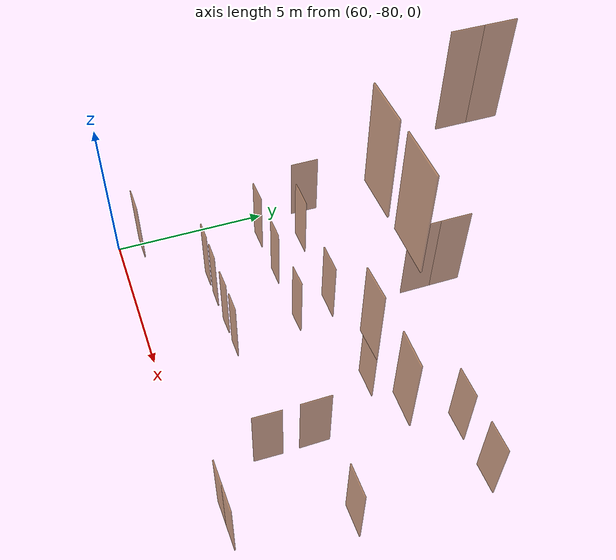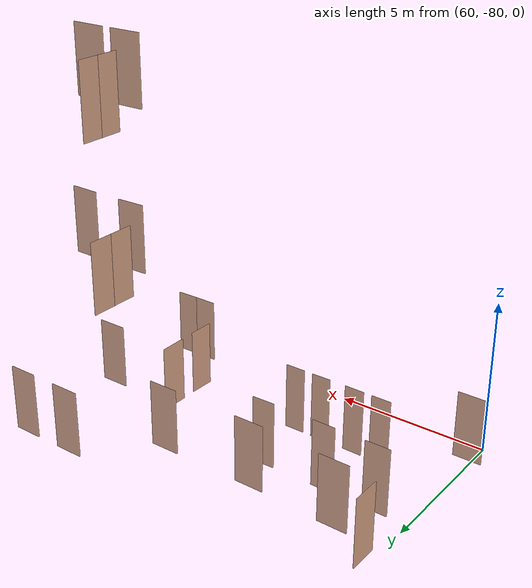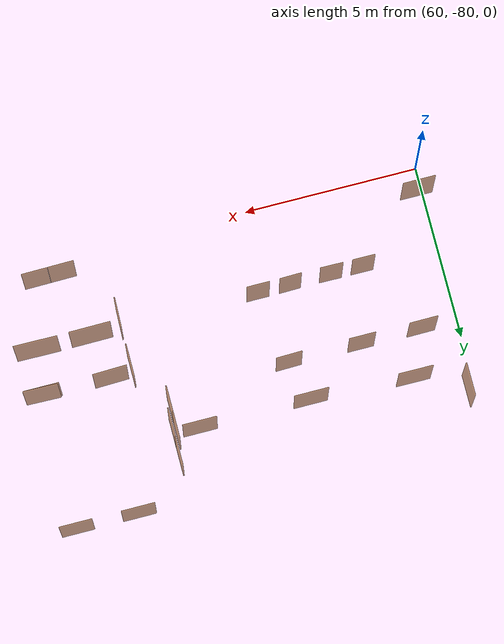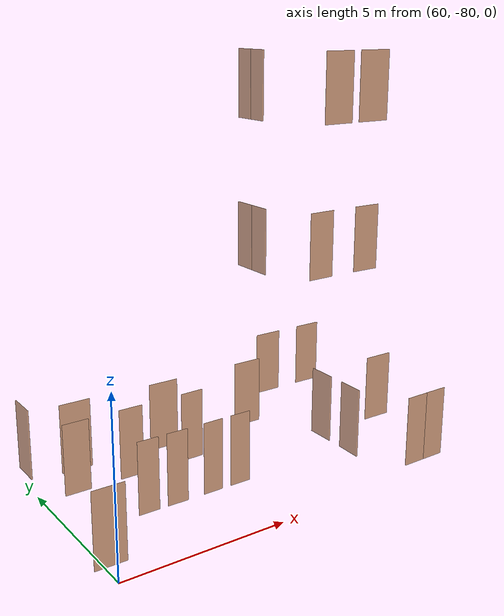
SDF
<sdf version="1.7">
 <world name="sim_world">
  <model name="p63">
   <pose>70.82112381855357 -79.4430016888389 0.0 0 0 0.013018026899995077</pose>
   <link name="right">
    <pose>0.3772541223731423 0 1.11 0 0 0</pose>
    <visual name="right_visual">
     <geometry><box><size>0.7445082447462846 0.03 2.2</size></box></geometry>
     <material>
      <ambient>0.5 0.25 0 0.6</ambient>
      <diffuse>0.5 0.25 0 0.6</diffuse>
      <pbr><metal><metalness>0.0</metalness></metal></pbr>
     </material>
    </visual>
    <collision name="right_collision">
     <geometry><box><size>0.7445082447462846 0.03 2.2</size></box></geometry>
     <surface><contact><collide_bitmask>0x02</collide_bitmask></contact></surface>
    </collision>
    <inertial>
     <mass>50.0</mass>
     <inertia><ixx>20.17041666666667</ixx><iyy>22.476218860396646</iyy><izz>2.313302193729974</izz></inertia>
    </inertial>
   </link>
   <joint name="right_joint" type="revolute">
    <parent>world</parent>
    <child>right</child>
    <axis><xyz>0 0 1</xyz><limit><lower>0</lower><upper>1.57</upper></limit></axis>
    <pose>0.3772541223731423 0 0 0 0 0</pose>
   </joint>
   <link name="left">
    <pose>-0.3772541223731423 0 1.11 0 0 0</pose>
    <visual name="left_visual">
     <geometry><box><size>0.7445082447462846 0.03 2.2</size></box></geometry>
     <material>
      <ambient>0.5 0.25 0 0.6</ambient>
      <diffuse>0.5 0.25 0 0.6</diffuse>
      <pbr><metal><metalness>0.0</metalness></metal></pbr>
     </material>
    </visual>
    <collision name="left_collision">
     <geometry><box><size>0.7445082447462846 0.03 2.2</size></box></geometry>
     <surface><contact><collide_bitmask>0x02</collide_bitmask></contact></surface>
    </collision>
    <inertial>
     <mass>50.0</mass>
     <inertia><ixx>20.17041666666667</ixx><iyy>22.476218860396646</iyy><izz>2.313302193729974</izz></inertia>
    </inertial>
   </link>
   <joint name="left_joint" type="revolute">
    <parent>world</parent>
    <child>left</child>
    <axis><xyz>0 0 1</xyz><limit><lower>-1.57</lower><upper>0</upper></limit></axis>
    <pose>-0.3772541223731423 0 0 0 0 0</pose>
   </joint>
   <plugin name="register_component" filename="libregister_component.so">
    <component name="Door">
     <v_max_door>0.5</v_max_door>
     <a_max_door>0.3</a_max_door>
     <a_nom_door>0.15</a_nom_door>
     <dx_min_door>0.01</dx_min_door>
     <f_max_door>500.0</f_max_door>
     <ros_interface>true</ros_interface>
     <door name="p63" type="DoubleSwingDoor" left_joint_name="left_joint" right_joint_name="right_joint"/>
    </component>
   </plugin>
  </model>
  <model name="p64">
   <pose>60.261414476608145 -73.4639788450713 0.0 0 0 -1.5707963267948966</pose>
   <link name="right">
    <pose>0 0 1.11 0 0 0</pose>
    <visual name="right_visual">
     <geometry><box><size>0.932327634736742 0.03 2.2</size></box></geometry>
     <material>
      <ambient>0.5 0.25 0 0.6</ambient>
      <diffuse>0.5 0.25 0 0.6</diffuse>
      <pbr><metal><metalness>0.0</metalness></metal></pbr>
     </material>
    </visual>
    <collision name="right_collision">
     <geometry><box><size>0.932327634736742 0.03 2.2</size></box></geometry>
     <surface><contact><collide_bitmask>0x02</collide_bitmask></contact></surface>
    </collision>
    <inertial>
     <mass>50.0</mass>
     <inertia><ixx>20.17041666666667</ixx><iyy>23.78847841039087</iyy><izz>3.625561743724199</izz></inertia>
    </inertial>
   </link>
   <joint name="right_joint" type="revolute">
    <parent>world</parent>
    <child>right</child>
    <axis><xyz>0 0 -1</xyz><limit><lower>0</lower><upper>1.57</upper></limit></axis>
    <pose>0.471163817368371 0 0 0 0 0</pose>
   </joint>
   <plugin name="register_component" filename="libregister_component.so">
    <component name="Door">
     <v_max_door>0.5</v_max_door>
     <a_max_door>0.3</a_max_door>
     <a_nom_door>0.15</a_nom_door>
     <dx_min_door>0.01</dx_min_door>
     <f_max_door>500.0</f_max_door>
     <ros_interface>true</ros_interface>
     <door name="p64" type="SwingDoor" left_joint_name="empty_joint" right_joint_name="right_joint"/>
    </component>
   </plugin>
  </model>
  <model name="p65">
   <pose>61.65566205445769 -74.09303798405978 0.0 0 0 3.137581021143092</pose>
   <link name="right">
    <pose>0 0 1.11 0 0 0</pose>
    <visual name="right_visual">
     <geometry><box><size>0.9815341554676652 0.03 2.2</size></box></geometry>
     <material>
      <ambient>0.5 0.25 0 0.6</ambient>
      <diffuse>0.5 0.25 0 0.6</diffuse>
      <pbr><metal><metalness>0.0</metalness></metal></pbr>
     </material>
    </visual>
    <collision name="right_collision">
     <geometry><box><size>0.9815341554676652 0.03 2.2</size></box></geometry>
     <surface><contact><collide_bitmask>0x02</collide_bitmask></contact></surface>
    </collision>
    <inertial>
     <mass>50.0</mass>
     <inertia><ixx>20.17041666666667</ixx><iyy>24.180872076456765</iyy><izz>4.017955409790095</izz></inertia>
    </inertial>
   </link>
   <joint name="right_joint" type="revolute">
    <parent>world</parent>
    <child>right</child>
    <axis><xyz>0 0 -1</xyz><limit><lower>0</lower><upper>1.57</upper></limit></axis>
    <pose>0.4957670777338326 0 0 0 0 0</pose>
   </joint>
   <plugin name="register_component" filename="libregister_component.so">
    <component name="Door">
     <v_max_door>0.5</v_max_door>
     <a_max_door>0.3</a_max_door>
     <a_nom_door>0.15</a_nom_door>
     <dx_min_door>0.01</dx_min_door>
     <f_max_door>500.0</f_max_door>
     <ros_interface>true</ros_interface>
     <door name="p65" type="SwingDoor" left_joint_name="empty_joint" right_joint_name="right_joint"/>
    </component>
   </plugin>
  </model>
  <model name="p66">
   <pose>61.084390092145455 -75.39346611952243 0.0 0 0 0.007190021528864753</pose>
   <link name="right">
    <pose>0 0 1.11 0 0 0</pose>
    <visual name="right_visual">
     <geometry><box><size>0.8090191256990077 0.03 2.2</size></box></geometry>
     <material>
      <ambient>0.5 0.25 0 0.6</ambient>
      <diffuse>0.5 0.25 0 0.6</diffuse>
      <pbr><metal><metalness>0.0</metalness></metal></pbr>
     </material>
    </visual>
    <collision name="right_collision">
     <geometry><box><size>0.8090191256990077 0.03 2.2</size></box></geometry>
     <surface><contact><collide_bitmask>0x02</collide_bitmask></contact></surface>
    </collision>
    <inertial>
     <mass>50.0</mass>
     <inertia><ixx>20.17041666666667</ixx><iyy>22.89379977394495</iyy><izz>2.7308831072782787</izz></inertia>
    </inertial>
   </link>
   <joint name="right_joint" type="revolute">
    <parent>world</parent>
    <child>right</child>
    <axis><xyz>0 0 1</xyz><limit><lower>0</lower><upper>1.57</upper></limit></axis>
    <pose>0.40950956284950385 0 0 0 0 0</pose>
   </joint>
   <plugin name="register_component" filename="libregister_component.so">
    <component name="Door">
     <v_max_door>0.5</v_max_door>
     <a_max_door>0.3</a_max_door>
     <a_nom_door>0.15</a_nom_door>
     <dx_min_door>0.01</dx_min_door>
     <f_max_door>500.0</f_max_door>
     <ros_interface>true</ros_interface>
     <door name="p66" type="SwingDoor" left_joint_name="empty_joint" right_joint_name="right_joint"/>
    </component>
   </plugin>
  </model>
  <model name="p67">
   <pose>62.84169357944954 -75.3905217623182 0.0 0 0 0.0</pose>
   <link name="right">
    <pose>0 0 1.11 0 0 0</pose>
    <visual name="right_visual">
     <geometry><box><size>0.7551328849515551 0.03 2.2</size></box></geometry>
     <material>
      <ambient>0.5 0.25 0 0.6</ambient>
      <diffuse>0.5 0.25 0 0.6</diffuse>
      <pbr><metal><metalness>0.0</metalness></metal></pbr>
     </material>
    </visual>
    <collision name="right_collision">
     <geometry><box><size>0.7551328849515551 0.03 2.2</size></box></geometry>
     <surface><contact><collide_bitmask>0x02</collide_bitmask></contact></surface>
    </collision>
    <inertial>
     <mass>50.0</mass>
     <inertia><ixx>20.17041666666667</ixx><iyy>22.542606974730248</iyy><izz>2.3796903080635774</izz></inertia>
    </inertial>
   </link>
   <joint name="right_joint" type="revolute">
    <parent>world</parent>
    <child>right</child>
    <axis><xyz>0 0 1</xyz><limit><lower>0</lower><upper>1.57</upper></limit></axis>
    <pose>0.38256644247577754 0 0 0 0 0</pose>
   </joint>
   <plugin name="register_component" filename="libregister_component.so">
    <component name="Door">
     <v_max_door>0.5</v_max_door>
     <a_max_door>0.3</a_max_door>
     <a_nom_door>0.15</a_nom_door>
     <dx_min_door>0.01</dx_min_door>
     <f_max_door>500.0</f_max_door>
     <ros_interface>true</ros_interface>
     <door name="p67" type="SwingDoor" left_joint_name="empty_joint" right_joint_name="right_joint"/>
    </component>
   </plugin>
  </model>
  <model name="p68">
   <pose>60.179939112915214 -79.25145180883534 0.0 0 0 0.0</pose>
   <link name="right">
    <pose>0 0 1.11 0 0 0</pose>
    <visual name="right_visual">
     <geometry><box><size>0.9287499629640672 0.03 2.2</size></box></geometry>
     <material>
      <ambient>0.5 0.25 0 0.6</ambient>
      <diffuse>0.5 0.25 0 0.6</diffuse>
      <pbr><metal><metalness>0.0</metalness></metal></pbr>
     </material>
    </visual>
    <collision name="right_collision">
     <geometry><box><size>0.9287499629640672 0.03 2.2</size></box></geometry>
     <surface><contact><collide_bitmask>0x02</collide_bitmask></contact></surface>
    </collision>
    <inertial>
     <mass>50.0</mass>
     <inertia><ixx>20.17041666666667</ixx><iyy>23.760735390440654</iyy><izz>3.5978187237739845</izz></inertia>
    </inertial>
   </link>
   <joint name="right_joint" type="revolute">
    <parent>world</parent>
    <child>right</child>
    <axis><xyz>0 0 -1</xyz><limit><lower>0</lower><upper>1.57</upper></limit></axis>
    <pose>0.4693749814820336 0 0 0 0 0</pose>
   </joint>
   <plugin name="register_component" filename="libregister_component.so">
    <component name="Door">
     <v_max_door>0.5</v_max_door>
     <a_max_door>0.3</a_max_door>
     <a_nom_door>0.15</a_nom_door>
     <dx_min_door>0.01</dx_min_door>
     <f_max_door>500.0</f_max_door>
     <ros_interface>true</ros_interface>
     <door name="p68" type="SwingDoor" left_joint_name="empty_joint" right_joint_name="right_joint"/>
    </component>
   </plugin>
  </model>
  <model name="p69">
   <pose>62.24107804213213 -77.51142558739005 0.0 0 0 -0.00240343465995288</pose>
   <link name="right">
    <pose>0 0 1.11 0 0 0</pose>
    <visual name="right_visual">
     <geometry><box><size>0.6464491123664134 0.03 2.2</size></box></geometry>
     <material>
      <ambient>0.5 0.25 0 0.6</ambient>
      <diffuse>0.5 0.25 0 0.6</diffuse>
      <pbr><metal><metalness>0.0</metalness></metal></pbr>
     </material>
    </visual>
    <collision name="right_collision">
     <geometry><box><size>0.6464491123664134 0.03 2.2</size></box></geometry>
     <surface><contact><collide_bitmask>0x02</collide_bitmask></contact></surface>
    </collision>
    <inertial>
     <mass>50.0</mass>
     <inertia><ixx>20.17041666666667</ixx><iyy>21.90790189533052</iyy><izz>1.7449852286638496</izz></inertia>
    </inertial>
   </link>
   <joint name="right_joint" type="revolute">
    <parent>world</parent>
    <child>right</child>
    <axis><xyz>0 0 -1</xyz><limit><lower>0</lower><upper>1.57</upper></limit></axis>
    <pose>0.32822455618320673 0 0 0 0 0</pose>
   </joint>
   <plugin name="register_component" filename="libregister_component.so">
    <component name="Door">
     <v_max_door>0.5</v_max_door>
     <a_max_door>0.3</a_max_door>
     <a_nom_door>0.15</a_nom_door>
     <dx_min_door>0.01</dx_min_door>
     <f_max_door>500.0</f_max_door>
     <ros_interface>true</ros_interface>
     <door name="p69" type="SwingDoor" left_joint_name="empty_joint" right_joint_name="right_joint"/>
    </component>
   </plugin>
  </model>
  <model name="p70">
   <pose>63.16139521791951 -77.51698097834144 0.0 0 0 3.127071976316211</pose>
   <link name="right">
    <pose>0 0 1.11 0 0 0</pose>
    <visual name="right_visual">
     <geometry><box><size>0.6465386523363117 0.03 2.2</size></box></geometry>
     <material>
      <ambient>0.5 0.25 0 0.6</ambient>
      <diffuse>0.5 0.25 0 0.6</diffuse>
      <pbr><metal><metalness>0.0</metalness></metal></pbr>
     </material>
    </visual>
    <collision name="right_collision">
     <geometry><box><size>0.6465386523363117 0.03 2.2</size></box></geometry>
     <surface><contact><collide_bitmask>0x02</collide_bitmask></contact></surface>
    </collision>
    <inertial>
     <mass>50.0</mass>
     <inertia><ixx>20.17041666666667</ixx><iyy>21.908384287353563</iyy><izz>1.7454676206868924</izz></inertia>
    </inertial>
   </link>
   <joint name="right_joint" type="revolute">
    <parent>world</parent>
    <child>right</child>
    <axis><xyz>0 0 -1</xyz><limit><lower>0</lower><upper>1.57</upper></limit></axis>
    <pose>0.32826932616815585 0 0 0 0 0</pose>
   </joint>
   <plugin name="register_component" filename="libregister_component.so">
    <component name="Door">
     <v_max_door>0.5</v_max_door>
     <a_max_door>0.3</a_max_door>
     <a_nom_door>0.15</a_nom_door>
     <dx_min_door>0.01</dx_min_door>
     <f_max_door>500.0</f_max_door>
     <ros_interface>true</ros_interface>
     <door name="p70" type="SwingDoor" left_joint_name="empty_joint" right_joint_name="right_joint"/>
    </component>
   </plugin>
  </model>
  <model name="p71">
   <pose>64.3447601552547 -77.51539213652934 0.0 0 0 0.019988949236715937</pose>
   <link name="right">
    <pose>0 0 1.11 0 0 0</pose>
    <visual name="right_visual">
     <geometry><box><size>0.6259304249468148 0.03 2.2</size></box></geometry>
     <material>
      <ambient>0.5 0.25 0 0.6</ambient>
      <diffuse>0.5 0.25 0 0.6</diffuse>
      <pbr><metal><metalness>0.0</metalness></metal></pbr>
     </material>
    </visual>
    <collision name="right_collision">
     <geometry><box><size>0.6259304249468148 0.03 2.2</size></box></geometry>
     <surface><contact><collide_bitmask>0x02</collide_bitmask></contact></surface>
    </collision>
    <inertial>
     <mass>50.0</mass>
     <inertia><ixx>20.17041666666667</ixx><iyy>21.79912040364209</iyy><izz>1.6362037369754177</izz></inertia>
    </inertial>
   </link>
   <joint name="right_joint" type="revolute">
    <parent>world</parent>
    <child>right</child>
    <axis><xyz>0 0 -1</xyz><limit><lower>0</lower><upper>1.57</upper></limit></axis>
    <pose>0.3179652124734074 0 0 0 0 0</pose>
   </joint>
   <plugin name="register_component" filename="libregister_component.so">
    <component name="Door">
     <v_max_door>0.5</v_max_door>
     <a_max_door>0.3</a_max_door>
     <a_nom_door>0.15</a_nom_door>
     <dx_min_door>0.01</dx_min_door>
     <f_max_door>500.0</f_max_door>
     <ros_interface>true</ros_interface>
     <door name="p71" type="SwingDoor" left_joint_name="empty_joint" right_joint_name="right_joint"/>
    </component>
   </plugin>
  </model>
  <model name="p72">
   <pose>65.27858804183583 -77.50903676928097 0.0 0 0 3.141592653589793</pose>
   <link name="right">
    <pose>0 0 1.11 0 0 0</pose>
    <visual name="right_visual">
     <geometry><box><size>0.6528025836271405 0.03 2.2</size></box></geometry>
     <material>
      <ambient>0.5 0.25 0 0.6</ambient>
      <diffuse>0.5 0.25 0 0.6</diffuse>
      <pbr><metal><metalness>0.0</metalness></metal></pbr>
     </material>
    </visual>
    <collision name="right_collision">
     <geometry><box><size>0.6528025836271405 0.03 2.2</size></box></geometry>
     <surface><contact><collide_bitmask>0x02</collide_bitmask></contact></surface>
    </collision>
    <inertial>
     <mass>50.0</mass>
     <inertia><ixx>20.17041666666667</ixx><iyy>21.94229672162613</iyy><izz>1.7793800549594576</izz></inertia>
    </inertial>
   </link>
   <joint name="right_joint" type="revolute">
    <parent>world</parent>
    <child>right</child>
    <axis><xyz>0 0 -1</xyz><limit><lower>0</lower><upper>1.57</upper></limit></axis>
    <pose>0.33140129181357025 0 0 0 0 0</pose>
   </joint>
   <plugin name="register_component" filename="libregister_component.so">
    <component name="Door">
     <v_max_door>0.5</v_max_door>
     <a_max_door>0.3</a_max_door>
     <a_nom_door>0.15</a_nom_door>
     <dx_min_door>0.01</dx_min_door>
     <f_max_door>500.0</f_max_door>
     <ros_interface>true</ros_interface>
     <door name="p72" type="SwingDoor" left_joint_name="empty_joint" right_joint_name="right_joint"/>
    </component>
   </plugin>
  </model>
  <model name="p73">
   <pose>64.93937587034463 -75.38187757399785 0.0 0 0 0.022976313403259948</pose>
   <link name="right">
    <pose>0 0 1.11 0 0 0</pose>
    <visual name="right_visual">
     <geometry><box><size>0.7425096629536441 0.03 2.2</size></box></geometry>
     <material>
      <ambient>0.5 0.25 0 0.6</ambient>
      <diffuse>0.5 0.25 0 0.6</diffuse>
      <pbr><metal><metalness>0.0</metalness></metal></pbr>
     </material>
    </visual>
    <collision name="right_collision">
     <geometry><box><size>0.7425096629536441 0.03 2.2</size></box></geometry>
     <surface><contact><collide_bitmask>0x02</collide_bitmask></contact></surface>
    </collision>
    <inertial>
     <mass>50.0</mass>
     <inertia><ixx>20.17041666666667</ixx><iyy>22.463835831581395</iyy><izz>2.300919164914726</izz></inertia>
    </inertial>
   </link>
   <joint name="right_joint" type="revolute">
    <parent>world</parent>
    <child>right</child>
    <axis><xyz>0 0 1</xyz><limit><lower>0</lower><upper>1.57</upper></limit></axis>
    <pose>0.37625483147682204 0 0 0 0 0</pose>
   </joint>
   <plugin name="register_component" filename="libregister_component.so">
    <component name="Door">
     <v_max_door>0.5</v_max_door>
     <a_max_door>0.3</a_max_door>
     <a_nom_door>0.15</a_nom_door>
     <dx_min_door>0.01</dx_min_door>
     <f_max_door>500.0</f_max_door>
     <ros_interface>true</ros_interface>
     <door name="p73" type="SwingDoor" left_joint_name="empty_joint" right_joint_name="right_joint"/>
    </component>
   </plugin>
  </model>
  <model name="p74">
   <pose>64.60708571597883 -74.22113418861669 0.0 0 0 3.141592653589793</pose>
   <link name="right">
    <pose>0 0 1.11 0 0 0</pose>
    <visual name="right_visual">
     <geometry><box><size>0.9815261770021715 0.03 2.2</size></box></geometry>
     <material>
      <ambient>0.5 0.25 0 0.6</ambient>
      <diffuse>0.5 0.25 0 0.6</diffuse>
      <pbr><metal><metalness>0.0</metalness></metal></pbr>
     </material>
    </visual>
    <collision name="right_collision">
     <geometry><box><size>0.9815261770021715 0.03 2.2</size></box></geometry>
     <surface><contact><collide_bitmask>0x02</collide_bitmask></contact></surface>
    </collision>
    <inertial>
     <mass>50.0</mass>
     <inertia><ixx>20.17041666666667</ixx><iyy>24.180806817252083</iyy><izz>4.017890150585409</izz></inertia>
    </inertial>
   </link>
   <joint name="right_joint" type="revolute">
    <parent>world</parent>
    <child>right</child>
    <axis><xyz>0 0 -1</xyz><limit><lower>0</lower><upper>1.57</upper></limit></axis>
    <pose>0.49576308850108575 0 0 0 0 0</pose>
   </joint>
   <plugin name="register_component" filename="libregister_component.so">
    <component name="Door">
     <v_max_door>0.5</v_max_door>
     <a_max_door>0.3</a_max_door>
     <a_nom_door>0.15</a_nom_door>
     <dx_min_door>0.01</dx_min_door>
     <f_max_door>500.0</f_max_door>
     <ros_interface>true</ros_interface>
     <door name="p74" type="SwingDoor" left_joint_name="empty_joint" right_joint_name="right_joint"/>
    </component>
   </plugin>
  </model>
  <model name="p75">
   <pose>67.80266880981308 -74.22113418861669 0.0 0 0 3.141592653589793</pose>
   <link name="right">
    <pose>0 0 1.11 0 0 0</pose>
    <visual name="right_visual">
     <geometry><box><size>0.9831927942875802 0.03 2.2</size></box></geometry>
     <material>
      <ambient>0.5 0.25 0 0.6</ambient>
      <diffuse>0.5 0.25 0 0.6</diffuse>
      <pbr><metal><metalness>0.0</metalness></metal></pbr>
     </material>
    </visual>
    <collision name="right_collision">
     <geometry><box><size>0.9831927942875802 0.03 2.2</size></box></geometry>
     <surface><contact><collide_bitmask>0x02</collide_bitmask></contact></surface>
    </collision>
    <inertial>
     <mass>50.0</mass>
     <inertia><ixx>20.17041666666667</ixx><iyy>24.194450294745923</iyy><izz>4.03153362807925</izz></inertia>
    </inertial>
   </link>
   <joint name="right_joint" type="revolute">
    <parent>world</parent>
    <child>right</child>
    <axis><xyz>0 0 -1</xyz><limit><lower>0</lower><upper>1.57</upper></limit></axis>
    <pose>0.4965963971437901 0 0 0 0 0</pose>
   </joint>
   <plugin name="register_component" filename="libregister_component.so">
    <component name="Door">
     <v_max_door>0.5</v_max_door>
     <a_max_door>0.3</a_max_door>
     <a_nom_door>0.15</a_nom_door>
     <dx_min_door>0.01</dx_min_door>
     <f_max_door>500.0</f_max_door>
     <ros_interface>true</ros_interface>
     <door name="p75" type="SwingDoor" left_joint_name="empty_joint" right_joint_name="right_joint"/>
    </component>
   </plugin>
  </model>
  <model name="p76">
   <pose>70.0398136351516 -72.32994577938436 0.0 0 0 0.0</pose>
   <link name="right">
    <pose>0 0 1.11 0 0 0</pose>
    <visual name="right_visual">
     <geometry><box><size>0.9616600989600295 0.03 2.2</size></box></geometry>
     <material>
      <ambient>0.5 0.25 0 0.6</ambient>
      <diffuse>0.5 0.25 0 0.6</diffuse>
      <pbr><metal><metalness>0.0</metalness></metal></pbr>
     </material>
    </visual>
    <collision name="right_collision">
     <geometry><box><size>0.9616600989600295 0.03 2.2</size></box></geometry>
     <surface><contact><collide_bitmask>0x02</collide_bitmask></contact></surface>
    </collision>
    <inertial>
     <mass>50.0</mass>
     <inertia><ixx>20.17041666666667</ixx><iyy>24.019958941382562</iyy><izz>3.8570422747158903</izz></inertia>
    </inertial>
   </link>
   <joint name="right_joint" type="revolute">
    <parent>world</parent>
    <child>right</child>
    <axis><xyz>0 0 1</xyz><limit><lower>0</lower><upper>1.57</upper></limit></axis>
    <pose>0.48583004948001474 0 0 0 0 0</pose>
   </joint>
   <plugin name="register_component" filename="libregister_component.so">
    <component name="Door">
     <v_max_door>0.5</v_max_door>
     <a_max_door>0.3</a_max_door>
     <a_nom_door>0.15</a_nom_door>
     <dx_min_door>0.01</dx_min_door>
     <f_max_door>500.0</f_max_door>
     <ros_interface>true</ros_interface>
     <door name="p76" type="SwingDoor" left_joint_name="empty_joint" right_joint_name="right_joint"/>
    </component>
   </plugin>
  </model>
  <model name="p77">
   <pose>71.81303887292233 -72.32994577938436 0.0 0 0 3.141592653589793</pose>
   <link name="right">
    <pose>0 0 1.11 0 0 0</pose>
    <visual name="right_visual">
     <geometry><box><size>0.9415495837160301 0.03 2.2</size></box></geometry>
     <material>
      <ambient>0.5 0.25 0 0.6</ambient>
      <diffuse>0.5 0.25 0 0.6</diffuse>
      <pbr><metal><metalness>0.0</metalness></metal></pbr>
     </material>
    </visual>
    <collision name="right_collision">
     <geometry><box><size>0.9415495837160301 0.03 2.2</size></box></geometry>
     <surface><contact><collide_bitmask>0x02</collide_bitmask></contact></surface>
    </collision>
    <inertial>
     <mass>50.0</mass>
     <inertia><ixx>20.17041666666667</ixx><iyy>23.860481744149297</iyy><izz>3.697565077482624</izz></inertia>
    </inertial>
   </link>
   <joint name="right_joint" type="revolute">
    <parent>world</parent>
    <child>right</child>
    <axis><xyz>0 0 -1</xyz><limit><lower>0</lower><upper>1.57</upper></limit></axis>
    <pose>0.4757747918580151 0 0 0 0 0</pose>
   </joint>
   <plugin name="register_component" filename="libregister_component.so">
    <component name="Door">
     <v_max_door>0.5</v_max_door>
     <a_max_door>0.3</a_max_door>
     <a_nom_door>0.15</a_nom_door>
     <dx_min_door>0.01</dx_min_door>
     <f_max_door>500.0</f_max_door>
     <ros_interface>true</ros_interface>
     <door name="p77" type="SwingDoor" left_joint_name="empty_joint" right_joint_name="right_joint"/>
    </component>
   </plugin>
  </model>
  <model name="p78">
   <pose>71.78797294894972 -76.23294124618535 0.0 0 0 3.141592653589793</pose>
   <link name="right">
    <pose>0 0 1.11 0 0 0</pose>
    <visual name="right_visual">
     <geometry><box><size>0.9804373203757046 0.03 2.2</size></box></geometry>
     <material>
      <ambient>0.5 0.25 0 0.6</ambient>
      <diffuse>0.5 0.25 0 0.6</diffuse>
      <pbr><metal><metalness>0.0</metalness></metal></pbr>
     </material>
    </visual>
    <collision name="right_collision">
     <geometry><box><size>0.9804373203757046 0.03 2.2</size></box></geometry>
     <surface><contact><collide_bitmask>0x02</collide_bitmask></contact></surface>
    </collision>
    <inertial>
     <mass>50.0</mass>
     <inertia><ixx>20.17041666666667</ixx><iyy>24.171905579939555</iyy><izz>4.0089889132728835</izz></inertia>
    </inertial>
   </link>
   <joint name="right_joint" type="revolute">
    <parent>world</parent>
    <child>right</child>
    <axis><xyz>0 0 1</xyz><limit><lower>0</lower><upper>1.57</upper></limit></axis>
    <pose>0.4952186601878523 0 0 0 0 0</pose>
   </joint>
   <plugin name="register_component" filename="libregister_component.so">
    <component name="Door">
     <v_max_door>0.5</v_max_door>
     <a_max_door>0.3</a_max_door>
     <a_nom_door>0.15</a_nom_door>
     <dx_min_door>0.01</dx_min_door>
     <f_max_door>500.0</f_max_door>
     <ros_interface>true</ros_interface>
     <door name="p78" type="SwingDoor" left_joint_name="empty_joint" right_joint_name="right_joint"/>
    </component>
   </plugin>
  </model>
  <model name="p79">
   <pose>69.24374833338277 -76.37452593997222 0.0 0 0 1.5707963267948966</pose>
   <link name="right">
    <pose>0 0 1.11 0 0 0</pose>
    <visual name="right_visual">
     <geometry><box><size>0.9115060294509811 0.03 2.2</size></box></geometry>
     <material>
      <ambient>0.5 0.25 0 0.6</ambient>
      <diffuse>0.5 0.25 0 0.6</diffuse>
      <pbr><metal><metalness>0.0</metalness></metal></pbr>
     </material>
    </visual>
    <collision name="right_collision">
     <geometry><box><size>0.9115060294509811 0.03 2.2</size></box></geometry>
     <surface><contact><collide_bitmask>0x02</collide_bitmask></contact></surface>
    </collision>
    <inertial>
     <mass>50.0</mass>
     <inertia><ixx>20.17041666666667</ixx><iyy>23.62851350718956</iyy><izz>3.465596840522887</izz></inertia>
    </inertial>
   </link>
   <joint name="right_joint" type="revolute">
    <parent>world</parent>
    <child>right</child>
    <axis><xyz>0 0 -1</xyz><limit><lower>0</lower><upper>1.57</upper></limit></axis>
    <pose>0.4607530147254906 0 0 0 0 0</pose>
   </joint>
   <plugin name="register_component" filename="libregister_component.so">
    <component name="Door">
     <v_max_door>0.5</v_max_door>
     <a_max_door>0.3</a_max_door>
     <a_nom_door>0.15</a_nom_door>
     <dx_min_door>0.01</dx_min_door>
     <f_max_door>500.0</f_max_door>
     <ros_interface>true</ros_interface>
     <door name="p79" type="SwingDoor" left_joint_name="empty_joint" right_joint_name="right_joint"/>
    </component>
   </plugin>
  </model>
  <model name="p80">
   <pose>69.239837338153 -77.75080738348498 0.0 0 0 1.5426551496313132</pose>
   <link name="right">
    <pose>0 0 1.11 0 0 0</pose>
    <visual name="right_visual">
     <geometry><box><size>0.8492480921471176 0.03 2.2</size></box></geometry>
     <material>
      <ambient>0.5 0.25 0 0.6</ambient>
      <diffuse>0.5 0.25 0 0.6</diffuse>
      <pbr><metal><metalness>0.0</metalness></metal></pbr>
     </material>
    </visual>
    <collision name="right_collision">
     <geometry><box><size>0.8492480921471176 0.03 2.2</size></box></geometry>
     <surface><contact><collide_bitmask>0x02</collide_bitmask></contact></surface>
    </collision>
    <inertial>
     <mass>50.0</mass>
     <inertia><ixx>20.17041666666667</ixx><iyy>23.171759675064667</iyy><izz>3.0088430083979967</izz></inertia>
    </inertial>
   </link>
   <joint name="right_joint" type="revolute">
    <parent>world</parent>
    <child>right</child>
    <axis><xyz>0 0 -1</xyz><limit><lower>0</lower><upper>1.57</upper></limit></axis>
    <pose>0.4296240460735588 0 0 0 0 0</pose>
   </joint>
   <plugin name="register_component" filename="libregister_component.so">
    <component name="Door">
     <v_max_door>0.5</v_max_door>
     <a_max_door>0.3</a_max_door>
     <a_nom_door>0.15</a_nom_door>
     <dx_min_door>0.01</dx_min_door>
     <f_max_door>500.0</f_max_door>
     <ros_interface>true</ros_interface>
     <door name="p80" type="SwingDoor" left_joint_name="empty_joint" right_joint_name="right_joint"/>
    </component>
   </plugin>
  </model>
  <model name="puerta68">
   <pose>68.6519562552891 -73.25769255441483 5.0 0 0 -1.5706432681940756</pose>
   <link name="right">
    <pose>0.39196733725420835 0 1.11 0 0 0</pose>
    <visual name="right_visual">
     <geometry><box><size>0.7739346745084167 0.03 2.2</size></box></geometry>
     <material>
      <ambient>0.5 0.25 0 0.6</ambient>
      <diffuse>0.5 0.25 0 0.6</diffuse>
      <pbr><metal><metalness>0.0</metalness></metal></pbr>
     </material>
    </visual>
    <collision name="right_collision">
     <geometry><box><size>0.7739346745084167 0.03 2.2</size></box></geometry>
     <surface><contact><collide_bitmask>0x02</collide_bitmask></contact></surface>
    </collision>
    <inertial>
     <mass>50.0</mass>
     <inertia><ixx>20.17041666666667</ixx><iyy>22.662395335026876</iyy><izz>2.499478668360204</izz></inertia>
    </inertial>
   </link>
   <joint name="right_joint" type="revolute">
    <parent>world</parent>
    <child>right</child>
    <axis><xyz>0 0 -1</xyz><limit><lower>0</lower><upper>1.57</upper></limit></axis>
    <pose>0.39196733725420835 0 0 0 0 0</pose>
   </joint>
   <link name="left">
    <pose>-0.39196733725420835 0 1.11 0 0 0</pose>
    <visual name="left_visual">
     <geometry><box><size>0.7739346745084167 0.03 2.2</size></box></geometry>
     <material>
      <ambient>0.5 0.25 0 0.6</ambient>
      <diffuse>0.5 0.25 0 0.6</diffuse>
      <pbr><metal><metalness>0.0</metalness></metal></pbr>
     </material>
    </visual>
    <collision name="left_collision">
     <geometry><box><size>0.7739346745084167 0.03 2.2</size></box></geometry>
     <surface><contact><collide_bitmask>0x02</collide_bitmask></contact></surface>
    </collision>
    <inertial>
     <mass>50.0</mass>
     <inertia><ixx>20.17041666666667</ixx><iyy>22.662395335026876</iyy><izz>2.499478668360204</izz></inertia>
    </inertial>
   </link>
   <joint name="left_joint" type="revolute">
    <parent>world</parent>
    <child>left</child>
    <axis><xyz>0 0 -1</xyz><limit><lower>-1.57</lower><upper>0</upper></limit></axis>
    <pose>-0.39196733725420835 0 0 0 0 0</pose>
   </joint>
   <plugin name="register_component" filename="libregister_component.so">
    <component name="Door">
     <v_max_door>0.5</v_max_door>
     <a_max_door>0.3</a_max_door>
     <a_nom_door>0.15</a_nom_door>
     <dx_min_door>0.01</dx_min_door>
     <f_max_door>500.0</f_max_door>
     <ros_interface>true</ros_interface>
     <door name="puerta68" type="DoubleSwingDoor" left_joint_name="left_joint" right_joint_name="right_joint"/>
    </component>
   </plugin>
  </model>
  <model name="puerta72">
   <pose>71.77696481514448 -75.39084071826719 5.0 0 0 -0.02326403618865275</pose>
   <link name="right">
    <pose>0 0 1.11 0 0 0</pose>
    <visual name="right_visual">
     <geometry><box><size>0.9486484447569798 0.03 2.2</size></box></geometry>
     <material>
      <ambient>0.5 0.25 0 0.6</ambient>
      <diffuse>0.5 0.25 0 0.6</diffuse>
      <pbr><metal><metalness>0.0</metalness></metal></pbr>
     </material>
    </visual>
    <collision name="right_collision">
     <geometry><box><size>0.9486484447569798 0.03 2.2</size></box></geometry>
     <surface><contact><collide_bitmask>0x02</collide_bitmask></contact></surface>
    </collision>
    <inertial>
     <mass>50.0</mass>
     <inertia><ixx>20.17041666666667</ixx><iyy>23.916391132249323</iyy><izz>3.753474465582653</izz></inertia>
    </inertial>
   </link>
   <joint name="right_joint" type="revolute">
    <parent>world</parent>
    <child>right</child>
    <axis><xyz>0 0 1</xyz><limit><lower>0</lower><upper>1.57</upper></limit></axis>
    <pose>0.47932422237848993 0 0 0 0 0</pose>
   </joint>
   <plugin name="register_component" filename="libregister_component.so">
    <component name="Door">
     <v_max_door>0.5</v_max_door>
     <a_max_door>0.3</a_max_door>
     <a_nom_door>0.15</a_nom_door>
     <dx_min_door>0.01</dx_min_door>
     <f_max_door>500.0</f_max_door>
     <ros_interface>true</ros_interface>
     <door name="puerta72" type="SwingDoor" left_joint_name="empty_joint" right_joint_name="right_joint"/>
    </component>
   </plugin>
  </model>
  <model name="puerta73">
   <pose>69.89045264140638 -75.39389641113752 5.0 0 0 -3.1117856758857623</pose>
   <link name="right">
    <pose>0 0 1.11 0 0 0</pose>
    <visual name="right_visual">
     <geometry><box><size>0.933710100138536 0.03 2.2</size></box></geometry>
     <material>
      <ambient>0.5 0.25 0 0.6</ambient>
      <diffuse>0.5 0.25 0 0.6</diffuse>
      <pbr><metal><metalness>0.0</metalness></metal></pbr>
     </material>
    </visual>
    <collision name="right_collision">
     <geometry><box><size>0.933710100138536 0.03 2.2</size></box></geometry>
     <surface><contact><collide_bitmask>0x02</collide_bitmask></contact></surface>
    </collision>
    <inertial>
     <mass>50.0</mass>
     <inertia><ixx>20.17041666666667</ixx><iyy>23.799227296252983</iyy><izz>3.636310629586312</izz></inertia>
    </inertial>
   </link>
   <joint name="right_joint" type="revolute">
    <parent>world</parent>
    <child>right</child>
    <axis><xyz>0 0 -1</xyz><limit><lower>0</lower><upper>1.57</upper></limit></axis>
    <pose>0.471855050069268 0 0 0 0 0</pose>
   </joint>
   <plugin name="register_component" filename="libregister_component.so">
    <component name="Door">
     <v_max_door>0.5</v_max_door>
     <a_max_door>0.3</a_max_door>
     <a_nom_door>0.15</a_nom_door>
     <dx_min_door>0.01</dx_min_door>
     <f_max_door>500.0</f_max_door>
     <ros_interface>true</ros_interface>
     <door name="puerta73" type="SwingDoor" left_joint_name="empty_joint" right_joint_name="right_joint"/>
    </component>
   </plugin>
  </model>
  <model name="puerta144">
   <pose>68.65274817305713 -73.15263295424302 10.0 0 0 -1.5699864108123194</pose>
   <link name="right">
    <pose>0.3392327188222659 0 1.11 0 0 0</pose>
    <visual name="right_visual">
     <geometry><box><size>0.6684654376445318 0.03 2.2</size></box></geometry>
     <material>
      <ambient>0.5 0.25 0 0.6</ambient>
      <diffuse>0.5 0.25 0 0.6</diffuse>
      <pbr><metal><metalness>0.0</metalness></metal></pbr>
     </material>
    </visual>
    <collision name="right_collision">
     <geometry><box><size>0.6684654376445318 0.03 2.2</size></box></geometry>
     <surface><contact><collide_bitmask>0x02</collide_bitmask></contact></surface>
    </collision>
    <inertial>
     <mass>50.0</mass>
     <inertia><ixx>20.17041666666667</ixx><iyy>22.028525172188733</iyy><izz>1.8656085055220644</izz></inertia>
    </inertial>
   </link>
   <joint name="right_joint" type="revolute">
    <parent>world</parent>
    <child>right</child>
    <axis><xyz>0 0 -1</xyz><limit><lower>0</lower><upper>1.57</upper></limit></axis>
    <pose>0.3392327188222659 0 0 0 0 0</pose>
   </joint>
   <link name="left">
    <pose>-0.3392327188222659 0 1.11 0 0 0</pose>
    <visual name="left_visual">
     <geometry><box><size>0.6684654376445318 0.03 2.2</size></box></geometry>
     <material>
      <ambient>0.5 0.25 0 0.6</ambient>
      <diffuse>0.5 0.25 0 0.6</diffuse>
      <pbr><metal><metalness>0.0</metalness></metal></pbr>
     </material>
    </visual>
    <collision name="left_collision">
     <geometry><box><size>0.6684654376445318 0.03 2.2</size></box></geometry>
     <surface><contact><collide_bitmask>0x02</collide_bitmask></contact></surface>
    </collision>
    <inertial>
     <mass>50.0</mass>
     <inertia><ixx>20.17041666666667</ixx><iyy>22.028525172188733</iyy><izz>1.8656085055220644</izz></inertia>
    </inertial>
   </link>
   <joint name="left_joint" type="revolute">
    <parent>world</parent>
    <child>left</child>
    <axis><xyz>0 0 -1</xyz><limit><lower>-1.57</lower><upper>0</upper></limit></axis>
    <pose>-0.3392327188222659 0 0 0 0 0</pose>
   </joint>
   <plugin name="register_component" filename="libregister_component.so">
    <component name="Door">
     <v_max_door>0.5</v_max_door>
     <a_max_door>0.3</a_max_door>
     <a_nom_door>0.15</a_nom_door>
     <dx_min_door>0.01</dx_min_door>
     <f_max_door>500.0</f_max_door>
     <ros_interface>true</ros_interface>
     <door name="puerta144" type="DoubleSwingDoor" left_joint_name="left_joint" right_joint_name="right_joint"/>
    </component>
   </plugin>
  </model>
  <model name="puerta177">
   <pose>70.1437403638243 -75.75065037465095 10.0 0 0 -3.1335516769565777</pose>
   <link name="right">
    <pose>0 0 1.11 0 0 0</pose>
    <visual name="right_visual">
     <geometry><box><size>1.0806456192483413 0.03 2.2</size></box></geometry>
     <material>
      <ambient>0.5 0.25 0 0.6</ambient>
      <diffuse>0.5 0.25 0 0.6</diffuse>
      <pbr><metal><metalness>0.0</metalness></metal></pbr>
     </material>
    </visual>
    <collision name="right_collision">
     <geometry><box><size>1.0806456192483413 0.03 2.2</size></box></geometry>
     <surface><contact><collide_bitmask>0x02</collide_bitmask></contact></surface>
    </collision>
    <inertial>
     <mass>50.0</mass>
     <inertia><ixx>20.17041666666667</ixx><iyy>25.032478976669303</iyy><izz>4.86956231000263</izz></inertia>
    </inertial>
   </link>
   <joint name="right_joint" type="revolute">
    <parent>world</parent>
    <child>right</child>
    <axis><xyz>0 0 -1</xyz><limit><lower>0</lower><upper>1.57</upper></limit></axis>
    <pose>0.5453228096241707 0 0 0 0 0</pose>
   </joint>
   <plugin name="register_component" filename="libregister_component.so">
    <component name="Door">
     <v_max_door>0.5</v_max_door>
     <a_max_door>0.3</a_max_door>
     <a_nom_door>0.15</a_nom_door>
     <dx_min_door>0.01</dx_min_door>
     <f_max_door>500.0</f_max_door>
     <ros_interface>true</ros_interface>
     <door name="puerta177" type="SwingDoor" left_joint_name="empty_joint" right_joint_name="right_joint"/>
    </component>
   </plugin>
  </model>
  <model name="puerta178">
   <pose>71.55496483344142 -75.74332004865857 10.0 0 0 -0.009455113755745276</pose>
   <link name="right">
    <pose>0 0 1.11 0 0 0</pose>
    <visual name="right_visual">
     <geometry><box><size>1.1394269517202342 0.03 2.2</size></box></geometry>
     <material>
      <ambient>0.5 0.25 0 0.6</ambient>
      <diffuse>0.5 0.25 0 0.6</diffuse>
      <pbr><metal><metalness>0.0</metalness></metal></pbr>
     </material>
    </visual>
    <collision name="right_collision">
     <geometry><box><size>1.1394269517202342 0.03 2.2</size></box></geometry>
     <surface><contact><collide_bitmask>0x02</collide_bitmask></contact></surface>
    </collision>
    <inertial>
     <mass>50.0</mass>
     <inertia><ixx>20.17041666666667</ixx><iyy>25.57622407627694</iyy><izz>5.413307409610271</izz></inertia>
    </inertial>
   </link>
   <joint name="right_joint" type="revolute">
    <parent>world</parent>
    <child>right</child>
    <axis><xyz>0 0 1</xyz><limit><lower>0</lower><upper>1.57</upper></limit></axis>
    <pose>0.5747134758601171 0 0 0 0 0</pose>
   </joint>
   <plugin name="register_component" filename="libregister_component.so">
    <component name="Door">
     <v_max_door>0.5</v_max_door>
     <a_max_door>0.3</a_max_door>
     <a_nom_door>0.15</a_nom_door>
     <dx_min_door>0.01</dx_min_door>
     <f_max_door>500.0</f_max_door>
     <ros_interface>true</ros_interface>
     <door name="puerta178" type="SwingDoor" left_joint_name="empty_joint" right_joint_name="right_joint"/>
    </component>
   </plugin>
  </model>
 </world>
</sdf>
